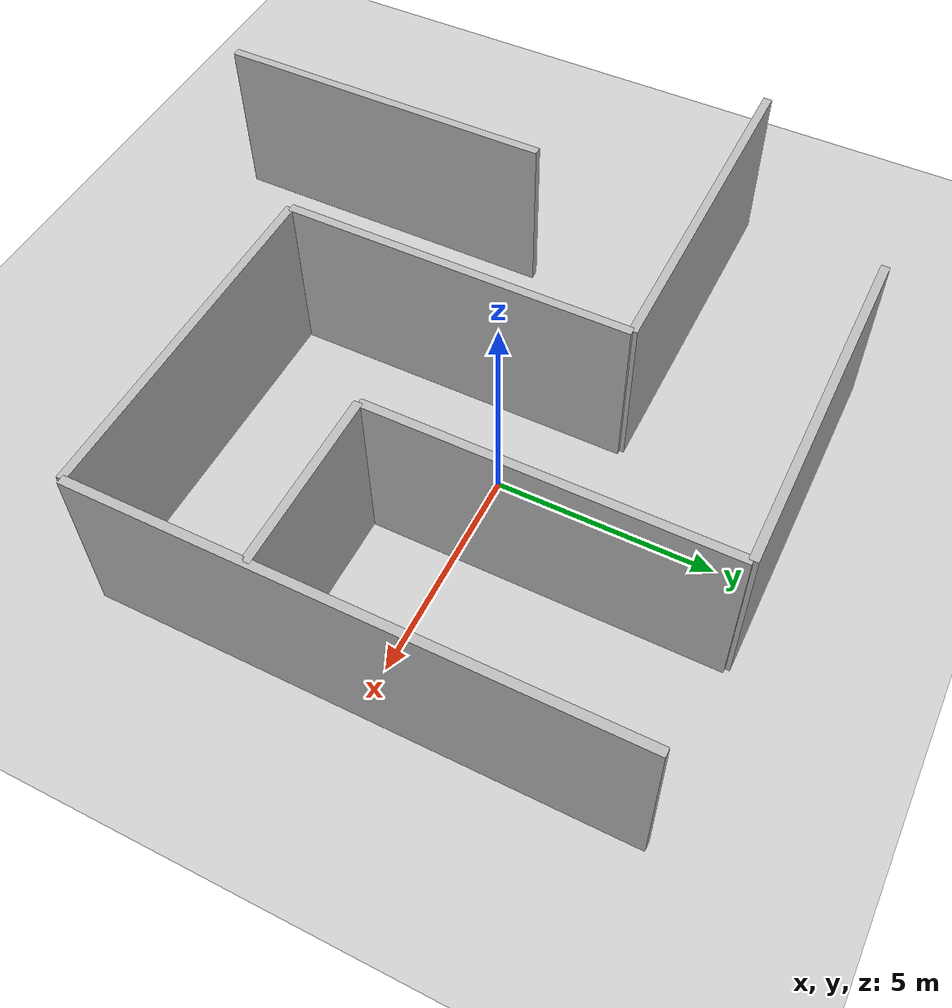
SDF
<?xml version="1.0" ?>
<sdf version="1.5">
  <world name="default">
    <author>
      <name>MacManhHai</name>
      <email>hai372002@gmail.com</email>
    </author>

    <!-- A global light source -->
    <include>
      <uri>model://sun</uri>
    </include>

    <!-- A ground plane -->
    <include>
      <uri>model://ground_plane</uri>
    </include>

    <physics name='default_physics' default='0' type='ode'>
      <gravity>0 0 -9.8066</gravity>
      <ode>
        <solver>
          <type>quick</type>
          <iters>10</iters>
          <sor>1.3</sor>
          <use_dynamic_moi_rescaling>0</use_dynamic_moi_rescaling>
        </solver>
        <constraints>
          <cfm>0</cfm>
          <erp>0.2</erp>
          <contact_max_correcting_vel>100</contact_max_correcting_vel>
          <contact_surface_layer>0.001</contact_surface_layer>
        </constraints>
      </ode>
      <max_step_size>0.004</max_step_size>
      <real_time_factor>1</real_time_factor>
      <real_time_update_rate>250</real_time_update_rate>
      <magnetic_field>6.0e-6 2.3e-5 -4.2e-5</magnetic_field>
    </physics>

    <!-- Inner wall  -->
    <model name="inner_wall_1">
      <static>true</static>
      <pose>-6 -6 2 0 0 0</pose>
      <link name="link">
        <collision name="collision">
          <geometry>
            <box><size>0.2 8 4</size></box>
          </geometry>
        </collision>
        <visual name="visual">
          <geometry>
            <box><size>0.2 8 4</size></box>
          </geometry>
        </visual>
      </link>
    </model>

    <model name="inner_wall_2">
      <static>true</static>
      <pose>-6 2 2 0 0 0</pose>
      <link name="link">
        <collision name="collision">
          <geometry>
            <box><size>8 0.2 4</size></box>
          </geometry>
        </collision>
        <visual name="visual">
          <geometry>
            <box><size>8 0.2 4</size></box>
          </geometry>
        </visual>
      </link>
    </model>

    <model name="inner_wall_3">
      <static>true</static>
      <pose>-2 -2 2 0 0 0</pose>
      <link name="link">
        <collision name="collision">
          <geometry>
            <box><size>0.2 8 4</size></box>
          </geometry>
        </collision>
        <visual name="visual">
          <geometry>
            <box><size>0.2 8 4</size></box>
          </geometry>
        </visual>
      </link>
    </model>

  <model name="inner_wall_4">
      <static>true</static>
      <pose>2 -6 2 0 0 0</pose>
      <link name="link">
        <collision name="collision">
          <geometry>
            <box><size>8 0.2 4</size></box>
          </geometry>
        </collision>
        <visual name="visual">
          <geometry>
            <box><size>8 0.2 4</size></box>
          </geometry>
        </visual>
      </link>
    </model>

    <model name="inner_wall_5">
      <static>true</static>
      <pose>6 0 2 0 0 0</pose>
      <link name="link">
        <collision name="collision">
          <geometry>
            <box><size>0.2 12 4</size></box>
          </geometry>
        </collision>
        <visual name="visual">
          <geometry>
            <box><size>0.2 12 4</size></box>
          </geometry>
        </visual>
      </link>
    </model>

    <model name="inner_wall_6">
      <static>true</static>
      <pose>2 2 2 0 0 0</pose>
      <link name="link">
        <collision name="collision">
          <geometry>
            <box><size>0.2 8 4</size></box>
          </geometry>
        </collision>
        <visual name="visual">
          <geometry>
            <box><size>0.2 8 4</size></box>
          </geometry>
        </visual>
      </link>
    </model>

    <model name="inner_wall_7">
      <static>true</static>
      <pose>-2 6 2 0 0 0</pose>
      <link name="link">
        <collision name="collision">
          <geometry>
            <box><size>8 0.2 4</size></box>
          </geometry>
        </collision>
        <visual name="visual">
          <geometry>
            <box><size>8 0.2 4</size></box>
          </geometry>
        </visual>
      </link>
    </model>

    <model name="inner_wall_8">
      <static>true</static>
      <pose>4 -2 2 0 0 0</pose>
      <link name="link">
        <collision name="collision">
          <geometry>
            <box><size>4 0.2 4</size></box>
          </geometry>
        </collision>
        <visual name="visual">
          <geometry>
            <box><size>4 0.2 4</size></box>
          </geometry>
        </visual>
      </link>
    </model>

  </world>
</sdf>
